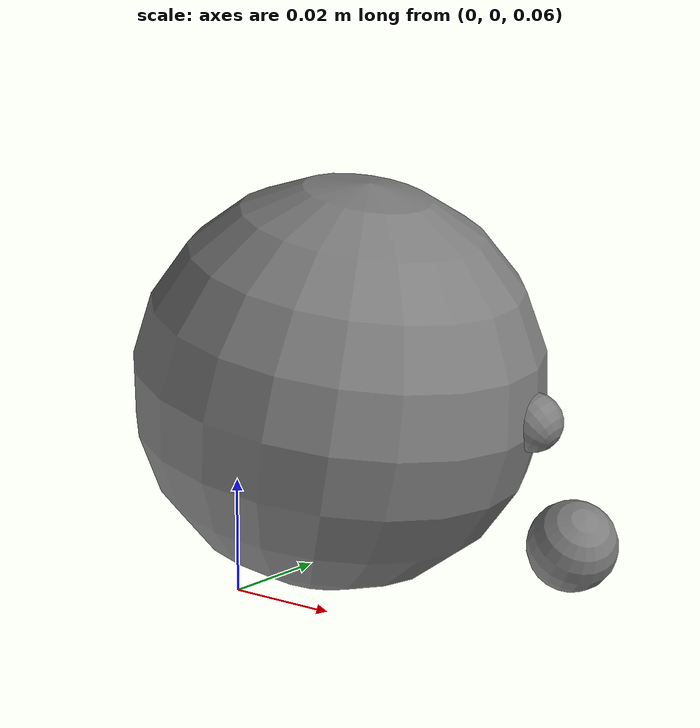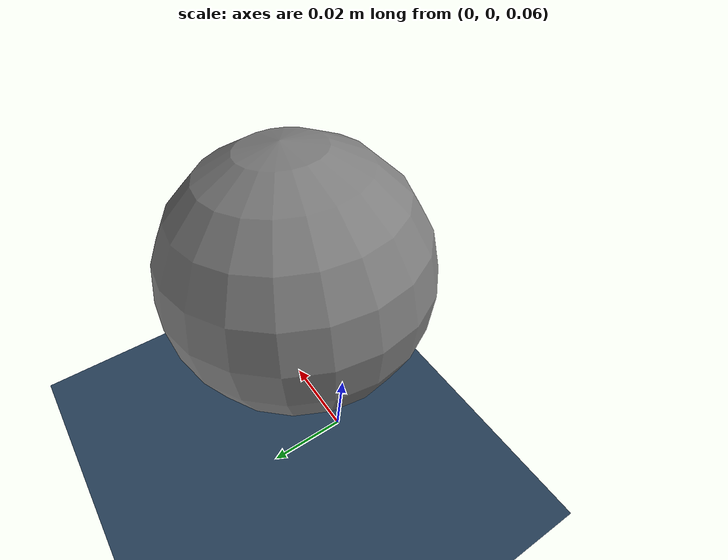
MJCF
<mujoco model="rat">
  <compiler angle="radian"/>
  <size njmax="8000" nconmax="4000"/>
  <default>
    <motor ctrlrange="-1 1" ctrllimited="true"/>
    <joint limited="true" armature="6e-07" damping="0.001"/>
    <geom friction="0.7 0.005 0.0001" solref="0.015 1" solimp=".9 .99 .003"/>
    <site group="3" rgba="0 0 1 1"/>
    <general ctrllimited="true" ctrlrange="-1 1" forcelimited="false" gainprm="0.01"/>
    <default class="bone">
      <geom contype="0" conaffinity="0" group="0" rgba="0.5 0.5 0.5 1" density="1100.0"/>
    </default>
    <default class="collision">
      <geom contype="1" conaffinity="1" condim="3" group="2"/>
      <default class="collision_primitive">
        <geom type="capsule" group="2" rgba="0 0.5 0.5 1" density="500.0"/>
        <default class="collision_primitive_paw">
          <geom condim="3" priority="1" rgba="0 0.6 0.7 1" friction="1.5 0.005 0.0001"/>
        </default>
        <default class="nonself_collision_primitive">
          <geom conaffinity="0"/>
        </default>
      </default>
    </default>
    <default class="lumbar">
      <joint group="3" pos="0.003 0 -0.003" armature="1e-05" damping="0.03" solimplimit="0 .99 .01"/>
      <general gainprm="0.15"/>
      <default class="lumbar_extend">
        <joint stiffness="0.02" range="-0.5235987755982988 0.7853981633974483"/>
        <general gainprm="0.4"/>
      </default>
      <default class="lumbar_bend">
        <joint stiffness="0.03" range="-0.5235987755982988 0.5235987755982988"/>
      </default>
      <default class="lumbar_twist">
        <joint stiffness="0.03" range="-0.5235987755982988 0.5235987755982988"/>
      </default>
    </default>
    <default class="cervical">
      <joint group="3" pos="-0.02 0 -0.05" stiffness="1.0" armature="0.001" damping="1.0" solimplimit="0 .99 .01"/>
      <default class="cervical_extend">
        <joint range="-0.4072434921320102 0.6108652381980153"/>
        <general gainprm="2.5"/>
      </default>
      <default class="cervical_bend">
        <joint range="-0.6108652381980153 0.6108652381980153"/>
        <general gainprm="2.5"/>
      </default>
      <default class="cervical_twist">
        <joint range="-0.6108652381980153 0.6108652381980153"/>
        <general gainprm="2.5"/>
      </default>
    </default>
    <default class="atlas">
      <joint axis="0 -1 0" stiffness="0.002" range="-0.08726646259971647 0.7853981633974483" damping="0.002" solimplimit="0 .99 .01"/>
      <general gainprm="0.025"/>
    </default>
    <default class="mandible">
      <joint stiffness="0.002" range="-0.296705972839036 0.2617993877991494" springref="-0.314159265359" damping="0.002" solimplimit="0 .99 .01"/>
      <general gainprm="0.025"/>
    </default>
    <default class="caudal">
      <joint group="3" stiffness="1e-05" damping="0.002" solimplimit="0 .99 .01"/>
      <general gainprm="0.005"/>
      <default class="caudal_extend">
        <joint range="-0.08726646259971647 0.08726646259971647"/>
      </default>
      <default class="caudal_bend">
        <joint range="-0.08726646259971647 0.08726646259971647"/>
      </default>
    </default>
    <default class="hip">
      <joint armature="1e-05" damping="0.02" solimplimit="0 .99 .01"/>
      <general gainprm="0.2"/>
      <default class="hip_supinate">
        <joint range="-0.6981317007977318 0.5235987755982988"/>
      </default>
      <default class="hip_abduct">
        <joint range="-0.5235987755982988 1.047197551196598"/>
      </default>
      <default class="hip_extend">
        <joint range="-1.570796326794897 1.047197551196598"/>
        <general gainprm="0.3"/>
      </default>
    </default>
    <default class="knee">
      <joint range="-1.221730476396031 1.53588974175501" damping="0.005" solimplimit="0 .99 .01"/>
      <general gainprm="0.2"/>
    </default>
    <default class="ankle">
      <joint range="-0.1396263401595464 1.396263401595464" damping="0.003" solimplimit="0 .99 .01"/>
      <general gainprm="0.2"/>
    </default>
    <default class="toe">
      <joint range="0 0.8726646259971648" damping="0.001" solimplimit="0 .99 .01"/>
      <general gainprm="0.025"/>
    </default>
    <default class="scapula">
      <joint damping="0.005" solimplimit="0 .99 .01"/>
      <general gainprm="0.25"/>
      <default class="scapula_supinate">
        <joint pos="0 0.005000000000000001 0" range="-0.0174532925199433 0.1745329251994329"/>
      </default>
      <default class="scapula_abduct">
        <joint pos="0 0.005000000000000001 -0.01" range="-0.2617993877991494 0.2617993877991494"/>
      </default>
      <default class="scapula_extend">
        <joint pos="0 0 0" range="-0.03490658503988659 0.03490658503988659"/>
        <general gainprm="0.25"/>
      </default>
    </default>
    <default class="shoulder">
      <joint range="-1.308996938995747 0.8726646259971648" damping="0.005" solimplimit="0 .99 .01"/>
      <general gainprm="0.15"/>
    </default>
    <default class="shoulder_sup">
      <joint range="-0.05235987755982989 1.134464013796314" damping="0.005" solimplimit="0 .99 .01"/>
      <general gainprm="0.15"/>
    </default>
    <default class="elbow">
      <joint range="-1.308996938995747 0.6981317007977318" damping="0.003" solimplimit="0 .99 .01"/>
      <general gainprm="0.15"/>
    </default>
    <default class="wrist">
      <joint range="-0.3490658503988659 2.094395102393195" damping="0.002" solimplimit="0 .99 .01"/>
      <general gainprm="0.05"/>
    </default>
    <default class="finger">
      <joint range="0 1.570796326794897" damping="0.002" solimplimit="0 .99 .01"/>
      <general gainprm="0.025"/>
    </default>
    <default class="sensor">
      <site group="4"/>
    </default>
    <default class="tracking_site">
      <site type="sphere" size="0.027" rgba="1 0 0 1" group="3"/>
    </default>
  </default>
  <visual>
    <quality shadowsize="2048"/>
  </visual>
  <statistic meansize="0.003"/>
  <asset>
    <texture type="skybox" builtin="gradient" rgb1=".3 .5 .7" rgb2="0 0 0" width="32" height="512"/>
    <texture name="body" type="cube" builtin="flat" mark="cross" width="128" height="128" rgb1="0.8 0.6 0.4" rgb2="0.8 0.6 0.4" markrgb="1 1 1" random="0.01"/>
    <material name="body" texture="body" texuniform="true" rgba="0.8 0.6 .4 1"/>
    <texture name="grid" type="2d" builtin="checker" width="512" height="512" rgb1=".1 .2 .3" rgb2=".2 .3 .4"/>
    <material name="grid" texture="grid" texrepeat="1 1" texuniform="true" reflectance=".2"/>
  </asset>
  <worldbody>
    <geom name="floor" size="0 0 .1" type="plane" material="grid" condim="3"/>
    <body name="torso" pos="0.03099526054578288 2.058524937651458e-07 0.1008957263119967">
      <freejoint name="root"/>
      <site name="tracking[torso]" class="tracking_site" />
      <light name="tracking_light" mode="trackcom" pos="0 0 3"/>
      <camera name="back" mode="trackcom" pos="-1 0 0.5" xyaxes="0 -1 0 1 0 2"/>
      <camera name="side" mode="trackcom" pos="0 -1 0.5" xyaxes="1 0 0 0 1 2"/>
      <camera name="side_alt" mode="trackcom" pos="0.5 -0.561 0.199" xyaxes="0.766 0.643 0.000 -0.162 0.192 0.968"/>
      <camera name="top" mode="trackcom" fovy="100.0" pos="0 0 1" zaxis="0 -0.2 1"/>
      <geom name="collision_torso" type="sphere" size="0.035" density="468.251260009" pos="-0.008200000000000001 0 0" euler="0 0.1745329251994329 0"/>
      <body name="scapula_L" pos="0.00656 0.00164 0.01148">
        <site name="tracking[scapula_L]" class="tracking_site" />
        <joint name="scapula_L_supinate" class="scapula_supinate" pos="0 -0.005000000000000001 0" axis="-0 -0 1"/>
        <joint name="scapula_L_abduct" class="scapula_abduct" pos="0 -0.005000000000000001 -0.01" axis="1 -0 -0"/>
        <joint name="scapula_L_extend" class="scapula_extend" pos="0 0 0" axis="0.3 1 0"/>
        <site name="shoulder_L" size="0.002" pos="0.0287 0.00984 -0.02542"/>
        <body name="upper_arm_L" pos="0.0287 0.00984 -0.02542">
          <site name="tracking[upper_arm_L]" class="tracking_site" />
          <joint name="shoulder_L" class="shoulder" axis="0 1 0"/>
          <joint name="shoulder_sup_L" class="shoulder_sup" axis="0 0 -1"/>
          <site name="elbow_L" type="cylinder" size="0.0006000000000000001 0.004" pos="-0.01593120836133218 0.01035528543486592 -0.02230369170586505" zaxis="0 1 0.2"/>
          <geom name="humerus_L_collision" size="0.007771321151869356 0.01554264230373871" pos="-0.007743344450064287 0.005787978890072665 -0.01198335273722202" quat="0.472560999180163 0.3450082805420177 0.0007016050154913519 0.8109592444517103"/>
        </body>
        <geom name="scapula_L_collision" type="sphere" size="0.005005370825529099 0.01463182792067528 0.02431104406714439" density="513.564612303" pos="0.01757062251063465 0.008636916680112587 -0.01522952249267691" quat="0.1844194062696375 0.7692222855376651 0.4740322845517004 0.3867556738123709"/>
      </body>
    </body>
  </worldbody>

  <contact>
    <exclude name="upper_arm_L:torso" body1="upper_arm_L" body2="torso"/>

    <pair geom1="collision_torso" geom2="floor"/>

  </contact>

  <actuator>
    <general name="scapula_L_supinate" forcerange="-0.25 0.25" joint="scapula_L_supinate" dyntype="filter" biastype="affine" dynprm="0.04" gainprm="0.04799655442984406" biasprm="0.03926990816987241 -0.5"/>
    <general name="scapula_L_abduct" forcerange="-0.25 0.25" joint="scapula_L_abduct" dyntype="filter" biastype="affine" dynprm="0.04" gainprm="0.1308996938995747" biasprm="0 -0.5"/>
    <general name="scapula_L_extend" forcerange="-0.25 0.25" joint="scapula_L_extend" dyntype="filter" biastype="affine" dynprm="0.04" gainprm="0.0174532925199433" biasprm="0 -0.5"/>
    <general name="shoulder_L" forcerange="-0.15 0.15" joint="shoulder_L" dyntype="filter" biastype="affine" dynprm="0.04" gainprm="0.3272492347489368" biasprm="-0.06544984694978737 -0.3"/>
    <general name="shoulder_sup_L" forcerange="-0.15 0.15" joint="shoulder_sup_L" dyntype="filter" biastype="affine" dynprm="0.04" gainprm="0.1780235837034216" biasprm="0.1623156204354726 -0.3"/>
  </actuator>
  <compiler meshdir="./"/>
</mujoco>
